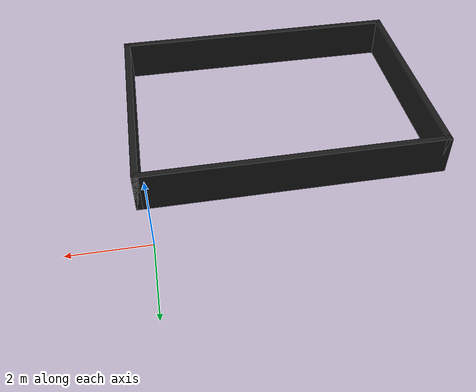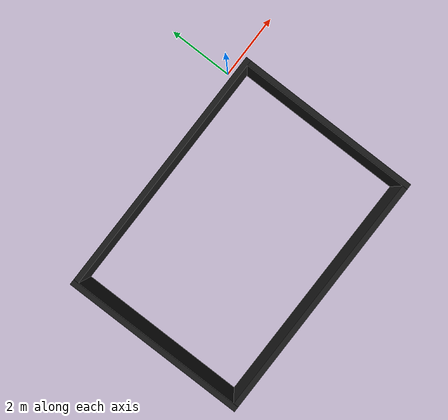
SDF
<?xml version='1.0'?>
<sdf version='1.6'>
  <model name='wall'>
    <pose frame=''>-3.33098 -3.04982 0 0 -0 0</pose>
    <link name='Wall_21'>
      <collision name='Wall_21_Collision'>
        <geometry>
          <box>
            <size>5.25 0.15 1.0</size>
          </box>
        </geometry>
        <pose frame=''>0 0 1.25 0 -0 0</pose>
      </collision>
      <visual name='Wall_21_Visual'>
        <pose frame=''>0 0 1.25 0 -0 0</pose>
        <geometry>
          <box>
            <size>5.25 0.15 1.0</size>
          </box>
        </geometry>
        <material> <!-- Wheel material -->
          <ambient>0.1 0.1 0.1 1</ambient>
          <diffuse>0.1 0.1 0.1 1</diffuse>
          <specular>0 0 0 0</specular>
          <emissive>0 0 0 1</emissive>
        </material> <!-- End wheel material -->
      </visual>
      <pose frame=''>-3.55 0 0 0 -0 1.5708</pose>
    </link>
    <link name='Wall_22'>
      <collision name='Wall_22_Collision'>
        <geometry>
          <box>
            <size>7.25 0.15 1.0</size>
          </box>
        </geometry>
        <pose frame=''>0 0 1.25 0 -0 0</pose>
      </collision>
      <visual name='Wall_22_Visual'>
        <pose frame=''>0 0 1.25 0 -0 0</pose>
        <geometry>
          <box>
            <size>7.25 0.15 1.0</size>
          </box>
        </geometry>
        <material> <!-- Wheel material -->
          <ambient>0.1 0.1 0.1 1</ambient>
          <diffuse>0.1 0.1 0.1 1</diffuse>
          <specular>0 0 0 0</specular>
          <emissive>0 0 0 1</emissive>
        </material> <!-- End wheel material -->
      </visual>
      <pose frame=''>0 2.55 0 0 -0 0</pose>
    </link>
    <link name='Wall_23'>
      <collision name='Wall_23_Collision'>
        <geometry>
          <box>
            <size>5.25 0.15 1.0</size>
          </box>
        </geometry>
        <pose frame=''>0 0 1.25 0 -0 0</pose>
      </collision>
      <visual name='Wall_23_Visual'>
        <pose frame=''>0 0 1.25 0 -0 0</pose>
        <geometry>
          <box>
            <size>5.25 0.15 1.0</size>
          </box>
        </geometry>
        <material> <!-- Wheel material -->
          <ambient>0.1 0.1 0.1 1</ambient>
          <diffuse>0.1 0.1 0.1 1</diffuse>
          <specular>0 0 0 0</specular>
          <emissive>0 0 0 1</emissive>
        </material> <!-- End wheel material -->
      </visual>
      <pose frame=''>3.55 0 0 0 0 -1.5708</pose>
    </link>
    <link name='Wall_24'>
      <collision name='Wall_24_Collision'>
        <geometry>
          <box>
            <size>7.25 0.15 1.0</size>
          </box>
        </geometry>
        <pose frame=''>0 0 1.25 0 -0 0</pose>
      </collision>
      <visual name='Wall_24_Visual'>
        <pose frame=''>0 0 1.25 0 -0 0</pose>
        <geometry>
          <box>
            <size>7.25 0.15 1.0</size>
          </box>
        </geometry>
        <material> <!-- Wheel material -->
          <ambient>0.1 0.1 0.1 1</ambient>
          <diffuse>0.1 0.1 0.1 1</diffuse>
          <specular>0 0 0 0</specular>
          <emissive>0 0 0 1</emissive>
        </material> <!-- End wheel material -->
      </visual>
      <pose frame=''>0 -2.55 0 0 -0 3.14159</pose>
    </link>
    <static>1</static>
  </model>
</sdf>
